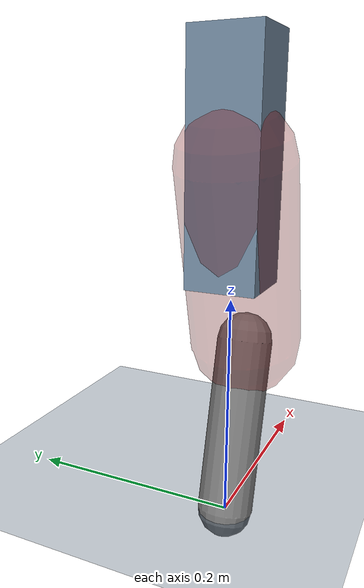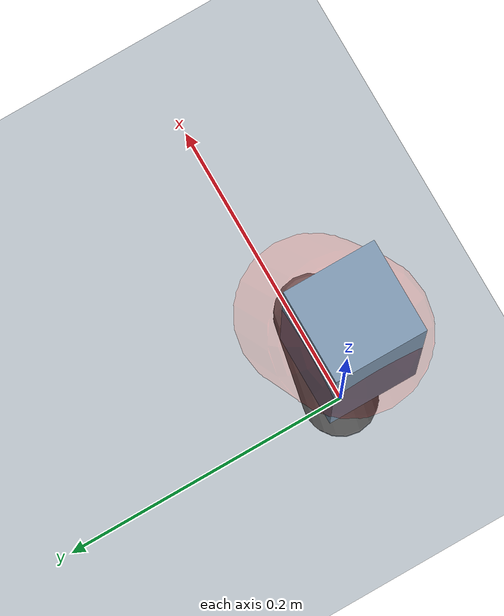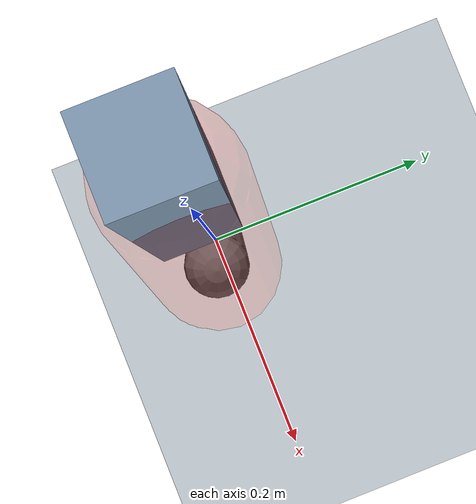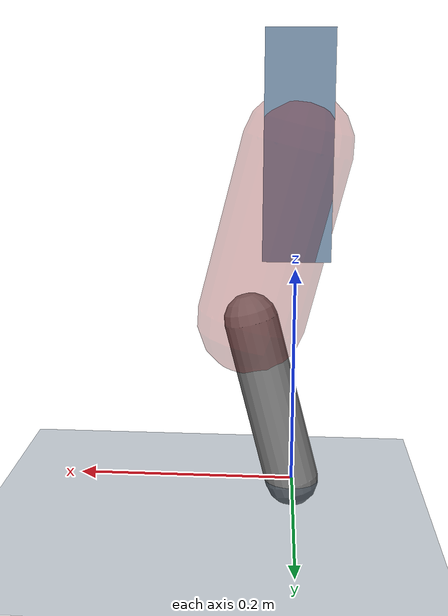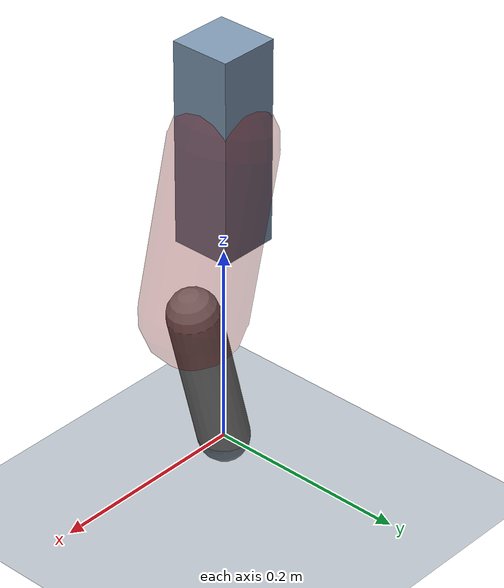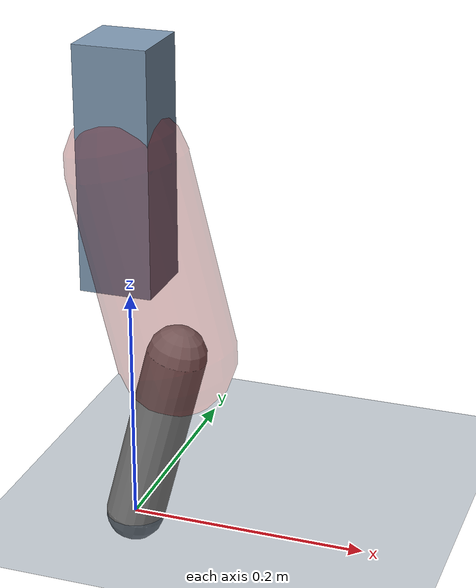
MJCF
<mujoco model="Hopper2D">
	<compiler inertiafromgeom="true" angle="radian" />
	<option timestep="0.001" integrator="implicit" cone="elliptic" solver="Newton" tolerance="1e-10" />

	<default>
		<geom contype="1" conaffinity="1" condim="3" friction="2 0.005 0.0001" solref="0.005 1" />
		<joint limited="true" damping="0.1" />
	</default>

	<asset>
		<texture name="skybox" type="skybox" builtin="gradient" rgb1=".4 .6 .8" rgb2="0 0 0" width="800" height="800" />
		<texture name="grid" type="2d" builtin="checker" rgb1=".1 .2 .3" rgb2=".2 .3 .4" width="300" height="300" mark="edge" markrgb=".2 .3 .4" />
		<material name="ground" texture="grid" texrepeat="1 1" texuniform="true" reflectance="0.1" />
		<material name="leg" rgba="0.5 0.6 0.7 1" />
	</asset>

	<worldbody>

		<geom name="floor" type="plane" size="5 5 0.25" material="ground" />

		<light directional="false" diffuse="0.8 0.8 0.8" specular="0.3 0.3 0.3" pos="0 0 2" dir="0 0 -1" />
		<light mode="targetbodycom" target="base" directional="false" diffuse="0.8 0.8 0.8" specular="0.3 0.3 0.3" pos="0 0 2" dir="0 0 -1" />

		<camera name="fixed" pos="0 -2 1" xyaxes="1 0 0 0 0 1" />
		<camera name="tracking" mode="trackcom" pos="0 -3 1" />

		<body name="root" pos="0 0 0.31228397033861793">
			<joint name="slide_x" type="slide" axis="1 0 0" range="-100 100" />
			<joint name="slide_z" type="slide" axis="0 0 1" range="0 10" />

			<body name="base" pos="0 0 0">
				<geom name="torso" type="box" size="0.03 0.03 0.1" mass="2.098" material="leg" />

				<body name="link1" pos="0 0 0" euler="0 1.3256903822443904 0">
					<joint type="hinge" axis="0 -1 0" pos="0 0 0" name="hinge1" limited="true" range="-3.14 3.14" stiffness="0" damping="0.1" />
					<geom name="thigh" type="capsule" fromto="0 0 0 0.1641096141345364 0 0" size="0.05" rgba="0.5 0 0 0.3" mass="0.6421630739228874" />

					<body name="link2" pos="0.1641096141345364 0 0" euler="0 0.4996090251888454 0">
						<joint type="hinge" axis="0 -1 0" pos="0 0 0" name="hinge2" limited="true" range="-3.14 3.14" stiffness="0" damping="0.1" />
						<geom name="shank" type="capsule" fromto="0 0 0 0.15817435620408155 0 0" size="0.025" mass="0.3649569205836734" />

					</body>
				</body>
			</body>
		</body>
	</worldbody>

	<actuator>
		<motor name="torque1" joint="hinge1" ctrlrange="-10.504067187689753 10.504067187689753" ctrllimited="true" gear="1" />
		<motor name="torque2" joint="hinge2" ctrlrange="-72.70955450612155 72.70955450612155" ctrllimited="true" gear="1" />
	</actuator>
</mujoco>
